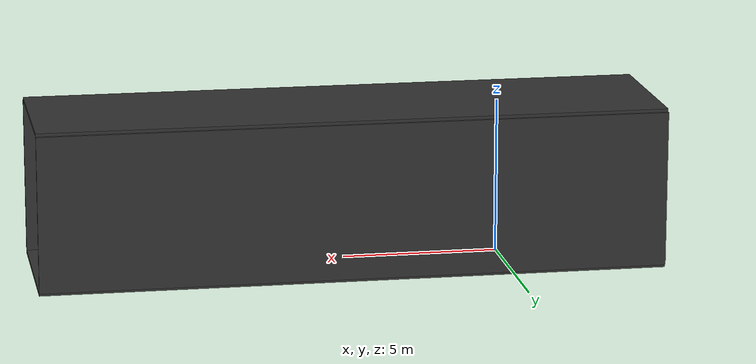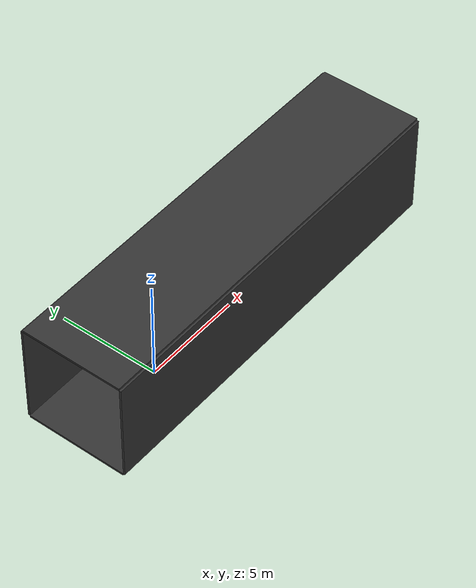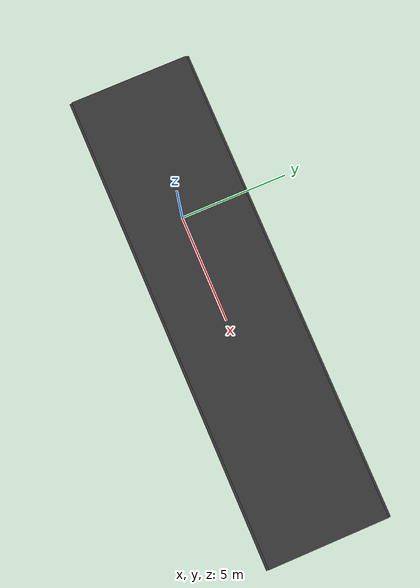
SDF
<?xml version="1.0"?>
<sdf version="1.8">
  <world name="tunnel">
    <plugin filename="libgz-sim-physics-system.so"
            name="gz::sim::systems::Physics"/>
    <plugin filename="libgz-sim-user-commands-system.so"
            name="gz::sim::systems::UserCommands"/>
    <plugin filename="libgz-sim-scene-broadcaster-system.so"
            name="gz::sim::systems::SceneBroadcaster"/>
    <plugin filename="libgz-sim-imu-system.so"
            name="gz::sim::systems::Imu"/>
    <plugin filename="libgz-sim-sensors-system.so"
            name="gz::sim::systems::Sensors">
      <render_engine>ogre2</render_engine>
    </plugin>

    <model name="tunnel">
      <static>true</static>
      <link name="floor">
        <pose>5 0 -0.05 0 0 0</pose>
        <collision name="collision">
          <geometry>
            <box>
              <size>20 5.0 0.1</size>
            </box>
          </geometry>
        </collision>
        <visual name="visual">
          <geometry>
            <box>
              <size>20 5.0 0.1</size>
            </box>
          </geometry>
          <material>
            <ambient>0.2 0.2 0.2 1</ambient>
            <diffuse>0.2 0.2 0.2 1</diffuse>
          </material>
        </visual>
      </link>
      <link name="left_wall">
        <pose>5 2.55 2.5 0 0 0</pose>
        <collision name="collision">
          <geometry>
            <box>
              <size>20 0.1 5</size>
            </box>
          </geometry>
        </collision>
        <visual name="visual">
          <geometry>
            <box>
              <size>20 0.1 5</size>
            </box>
          </geometry>
          <material>
            <ambient>0.2 0.2 0.2 1</ambient>
            <diffuse>0.2 0.2 0.2 1</diffuse>
          </material>
        </visual>
      </link>
      <link name="right_wall">
        <pose>5 -2.55 2.5 0 0 0</pose>
        <collision name="collision">
          <geometry>
            <box>
              <size>20 0.1 5</size>
            </box>
          </geometry>
        </collision>
        <visual name="visual">
          <geometry>
            <box>
              <size>20 0.1 5</size>
            </box>
          </geometry>
          <material>
            <ambient>0.2 0.2 0.2 1</ambient>
            <diffuse>0.2 0.2 0.2 1</diffuse>
          </material>
        </visual>
      </link>
      <link name="ceiling">
        <pose>5 0 5.05 0 0 0</pose>
        <collision name="collision">
          <geometry>
            <box>
              <size>20 5.0 0.1</size>
            </box>
          </geometry>
        </collision>
        <visual name="visual">
          <geometry>
            <box>
              <size>20 5.0 0.1</size>
            </box>
          </geometry>
          <material>
            <ambient>0.2 0.2 0.2 1</ambient>
            <diffuse>0.2 0.2 0.2 1</diffuse>
          </material>
        </visual>
      </link>
    </model>
  </world>
</sdf>
